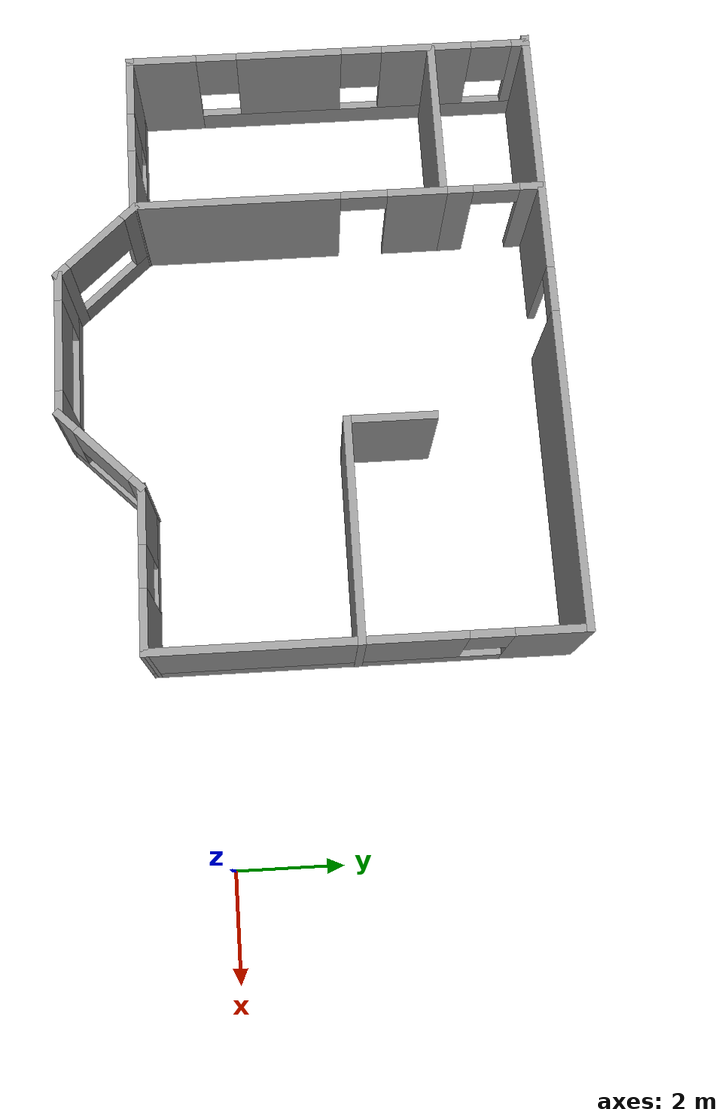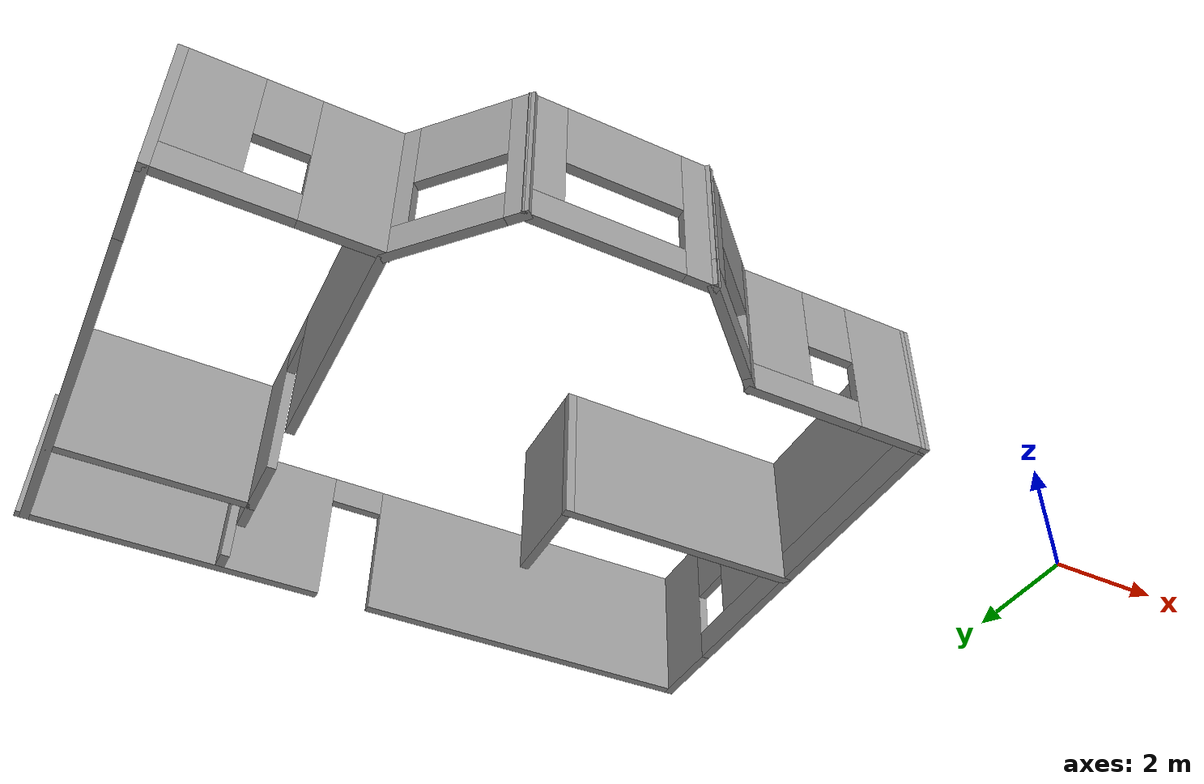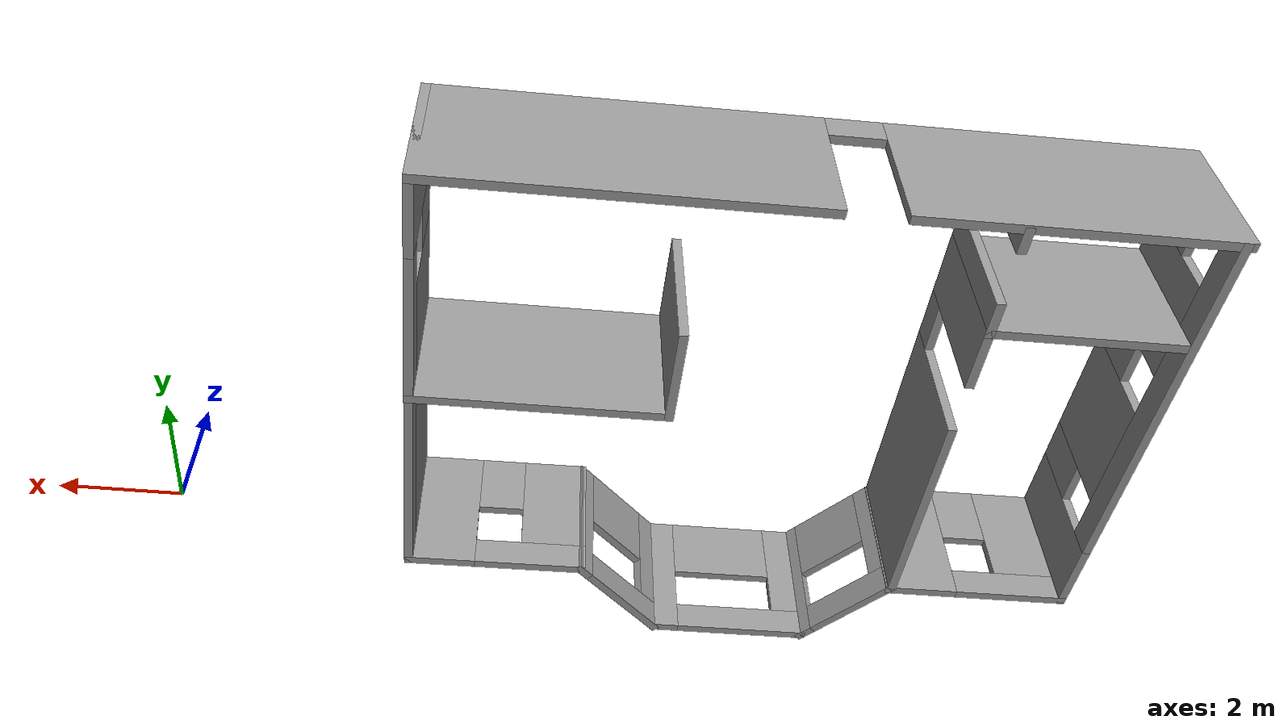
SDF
<?xml version='1.0'?>
<sdf version='1.6'>
  <model name='apartment2'>
    <pose frame=''>-9.67412 1.84886 0 0 -0 0</pose>
    <link name='Wall_10'>
      <pose frame=''>-4.26116 -3.17599 0 0 -0 3.14159</pose>
      <visual name='Wall_10_Visual_0'>
        <pose frame=''>-1.01463 0 1.25 0 -0 0</pose>
        <geometry>
          <box>
            <size>1.29272 0.15 2.5</size>
          </box>
        </geometry>
        <material>
          <script>
            <uri>file://media/materials/scripts/gazebo.material</uri>
            <name>Gazebo/Grey</name>
          </script>
          <ambient>1 1 1 1</ambient>
        </material>
        <meta>
          <layer>0</layer>
        </meta>
      </visual>
      <collision name='Wall_10_Collision_0'>
        <geometry>
          <box>
            <size>1.29272 0.15 2.5</size>
          </box>
        </geometry>
        <pose frame=''>-1.01463 0 1.25 0 -0 0</pose>
      </collision>
      <visual name='Wall_10_Visual_1'>
        <pose frame=''>0.64636 0 0.25 0 -0 0</pose>
        <geometry>
          <box>
            <size>2.02925 0.15 0.5</size>
          </box>
        </geometry>
        <material>
          <script>
            <uri>file://media/materials/scripts/gazebo.material</uri>
            <name>Gazebo/Grey</name>
          </script>
          <ambient>1 1 1 1</ambient>
        </material>
        <meta>
          <layer>0</layer>
        </meta>
      </visual>
      <collision name='Wall_10_Collision_1'>
        <geometry>
          <box>
            <size>2.02925 0.15 0.5</size>
          </box>
        </geometry>
        <pose frame=''>0.64636 0 0.25 0 -0 0</pose>
      </collision>
      <visual name='Wall_10_Visual_2'>
        <pose frame=''>1.04636 0 1.5 0 -0 0</pose>
        <geometry>
          <box>
            <size>1.22925 0.15 2</size>
          </box>
        </geometry>
        <material>
          <script>
            <uri>file://media/materials/scripts/gazebo.material</uri>
            <name>Gazebo/Grey</name>
          </script>
          <ambient>1 1 1 1</ambient>
        </material>
        <meta>
          <layer>0</layer>
        </meta>
      </visual>
      <collision name='Wall_10_Collision_2'>
        <geometry>
          <box>
            <size>1.22925 0.15 2</size>
          </box>
        </geometry>
        <pose frame=''>1.04636 0 1.5 0 -0 0</pose>
      </collision>
      <visual name='Wall_10_Visual_3'>
        <pose frame=''>0.031734 0 1.9 0 -0 0</pose>
        <geometry>
          <box>
            <size>0.8 0.15 1.2</size>
          </box>
        </geometry>
        <material>
          <script>
            <uri>file://media/materials/scripts/gazebo.material</uri>
            <name>Gazebo/Grey</name>
          </script>
          <ambient>1 1 1 1</ambient>
        </material>
        <meta>
          <layer>0</layer>
        </meta>
      </visual>
      <collision name='Wall_10_Collision_3'>
        <geometry>
          <box>
            <size>0.8 0.15 1.2</size>
          </box>
        </geometry>
        <pose frame=''>0.031734 0 1.9 0 -0 0</pose>
      </collision>
    </link>
    <link name='Wall_11'>
      <pose frame=''>-5.84712 0.749005 0 0 -0 1.5708</pose>
      <visual name='Wall_11_Visual_0'>
        <pose frame=''>-3.30802 0 1.25 0 -0 0</pose>
        <geometry>
          <box>
            <size>1.38396 0.15 2.5</size>
          </box>
        </geometry>
        <material>
          <script>
            <uri>file://media/materials/scripts/gazebo.material</uri>
            <name>Gazebo/Grey</name>
          </script>
          <ambient>1 1 1 1</ambient>
        </material>
        <meta>
          <layer>0</layer>
        </meta>
      </visual>
      <collision name='Wall_11_Collision_0'>
        <geometry>
          <box>
            <size>1.38396 0.15 2.5</size>
          </box>
        </geometry>
        <pose frame=''>-3.30802 0 1.25 0 -0 0</pose>
      </collision>
      <visual name='Wall_11_Visual_1'>
        <pose frame=''>0.691981 0 0.25 0 -0 0</pose>
        <geometry>
          <box>
            <size>6.61604 0.15 0.5</size>
          </box>
        </geometry>
        <material>
          <script>
            <uri>file://media/materials/scripts/gazebo.material</uri>
            <name>Gazebo/Grey</name>
          </script>
          <ambient>1 1 1 1</ambient>
        </material>
        <meta>
          <layer>0</layer>
        </meta>
      </visual>
      <collision name='Wall_11_Collision_1'>
        <geometry>
          <box>
            <size>6.61604 0.15 0.5</size>
          </box>
        </geometry>
        <pose frame=''>0.691981 0 0.25 0 -0 0</pose>
      </collision>
      <visual name='Wall_11_Visual_2'>
        <pose frame=''>-0.777617 0 1.5 0 -0 0</pose>
        <geometry>
          <box>
            <size>2.07684 0.15 2</size>
          </box>
        </geometry>
        <material>
          <script>
            <uri>file://media/materials/scripts/gazebo.material</uri>
            <name>Gazebo/Grey</name>
          </script>
          <ambient>1 1 1 1</ambient>
        </material>
        <meta>
          <layer>0</layer>
        </meta>
      </visual>
      <collision name='Wall_11_Collision_2'>
        <geometry>
          <box>
            <size>2.07684 0.15 2</size>
          </box>
        </geometry>
        <pose frame=''>-0.777617 0 1.5 0 -0 0</pose>
      </collision>
      <visual name='Wall_11_Visual_3'>
        <pose frame=''>1.95069 0 1.5 0 -0 0</pose>
        <geometry>
          <box>
            <size>1.77978 0.15 2</size>
          </box>
        </geometry>
        <material>
          <script>
            <uri>file://media/materials/scripts/gazebo.material</uri>
            <name>Gazebo/Grey</name>
          </script>
          <ambient>1 1 1 1</ambient>
        </material>
        <meta>
          <layer>0</layer>
        </meta>
      </visual>
      <collision name='Wall_11_Collision_3'>
        <geometry>
          <box>
            <size>1.77978 0.15 2</size>
          </box>
        </geometry>
        <pose frame=''>1.95069 0 1.5 0 -0 0</pose>
      </collision>
      <visual name='Wall_11_Visual_4'>
        <pose frame=''>3.82029 0 1.5 0 -0 0</pose>
        <geometry>
          <box>
            <size>0.359421 0.15 2</size>
          </box>
        </geometry>
        <material>
          <script>
            <uri>file://media/materials/scripts/gazebo.material</uri>
            <name>Gazebo/Grey</name>
          </script>
          <ambient>1 1 1 1</ambient>
        </material>
        <meta>
          <layer>0</layer>
        </meta>
      </visual>
      <collision name='Wall_11_Collision_4'>
        <geometry>
          <box>
            <size>0.359421 0.15 2</size>
          </box>
        </geometry>
        <pose frame=''>3.82029 0 1.5 0 -0 0</pose>
      </collision>
      <visual name='Wall_11_Visual_5'>
        <pose frame=''>-2.21604 0 1.9 0 -0 0</pose>
        <geometry>
          <box>
            <size>0.8 0.15 1.2</size>
          </box>
        </geometry>
        <material>
          <script>
            <uri>file://media/materials/scripts/gazebo.material</uri>
            <name>Gazebo/Grey</name>
          </script>
          <ambient>1 1 1 1</ambient>
        </material>
        <meta>
          <layer>0</layer>
        </meta>
      </visual>
      <collision name='Wall_11_Collision_5'>
        <geometry>
          <box>
            <size>0.8 0.15 1.2</size>
          </box>
        </geometry>
        <pose frame=''>-2.21604 0 1.9 0 -0 0</pose>
      </collision>
      <visual name='Wall_11_Visual_6'>
        <pose frame=''>0.660804 0 1.9 0 -0 0</pose>
        <geometry>
          <box>
            <size>0.8 0.15 1.2</size>
          </box>
        </geometry>
        <material>
          <script>
            <uri>file://media/materials/scripts/gazebo.material</uri>
            <name>Gazebo/Grey</name>
          </script>
          <ambient>1 1 1 1</ambient>
        </material>
        <meta>
          <layer>0</layer>
        </meta>
      </visual>
      <collision name='Wall_11_Collision_6'>
        <geometry>
          <box>
            <size>0.8 0.15 1.2</size>
          </box>
        </geometry>
        <pose frame=''>0.660804 0 1.9 0 -0 0</pose>
      </collision>
      <visual name='Wall_11_Visual_7'>
        <pose frame=''>3.24058 0 1.9 0 -0 0</pose>
        <geometry>
          <box>
            <size>0.8 0.15 1.2</size>
          </box>
        </geometry>
        <material>
          <script>
            <uri>file://media/materials/scripts/gazebo.material</uri>
            <name>Gazebo/Grey</name>
          </script>
          <ambient>1 1 1 1</ambient>
        </material>
        <meta>
          <layer>0</layer>
        </meta>
      </visual>
      <collision name='Wall_11_Collision_7'>
        <geometry>
          <box>
            <size>0.8 0.15 1.2</size>
          </box>
        </geometry>
        <pose frame=''>3.24058 0 1.9 0 -0 0</pose>
      </collision>
    </link>
    <link name='Wall_13'>
      <pose frame=''>-2.70325 3.71033 0 0 0 -1.5708</pose>
      <visual name='Wall_13_Visual_0'>
        <pose frame=''>-0.773954 0 1.25 0 -0 0</pose>
        <geometry>
          <box>
            <size>0.452092 0.15 2.5</size>
          </box>
        </geometry>
        <material>
          <script>
            <uri>file://media/materials/scripts/gazebo.material</uri>
            <name>Gazebo/Grey</name>
          </script>
          <ambient>1 1 1 1</ambient>
        </material>
        <meta>
          <layer>0</layer>
        </meta>
      </visual>
      <collision name='Wall_13_Collision_0'>
        <geometry>
          <box>
            <size>0.452092 0.15 2.5</size>
          </box>
        </geometry>
        <pose frame=''>-0.773954 0 1.25 0 -0 0</pose>
      </collision>
      <visual name='Wall_13_Visual_1'>
        <pose frame=''>0.676046 0 1.25 0 -0 0</pose>
        <geometry>
          <box>
            <size>0.647908 0.15 2.5</size>
          </box>
        </geometry>
        <material>
          <script>
            <uri>file://media/materials/scripts/gazebo.material</uri>
            <name>Gazebo/Grey</name>
          </script>
          <ambient>1 1 1 1</ambient>
        </material>
        <meta>
          <layer>0</layer>
        </meta>
      </visual>
      <collision name='Wall_13_Collision_1'>
        <geometry>
          <box>
            <size>0.647908 0.15 2.5</size>
          </box>
        </geometry>
        <pose frame=''>0.676046 0 1.25 0 -0 0</pose>
      </collision>
      <visual name='Wall_13_Visual_2'>
        <pose frame=''>-0.097908 0 2.25 0 -0 0</pose>
        <geometry>
          <box>
            <size>0.9 0.15 0.5</size>
          </box>
        </geometry>
        <material>
          <script>
            <uri>file://media/materials/scripts/gazebo.material</uri>
            <name>Gazebo/Grey</name>
          </script>
          <ambient>1 1 1 1</ambient>
        </material>
        <meta>
          <layer>0</layer>
        </meta>
      </visual>
      <collision name='Wall_13_Collision_2'>
        <geometry>
          <box>
            <size>0.9 0.15 0.5</size>
          </box>
        </geometry>
        <pose frame=''>-0.097908 0 2.25 0 -0 0</pose>
      </collision>
    </link>
    <link name='Wall_14'>
      <collision name='Wall_14_Collision'>
        <geometry>
          <box>
            <size>3.25 0.15 2.5</size>
          </box>
        </geometry>
        <pose frame=''>0 0 1.25 0 -0 0</pose>
      </collision>
      <visual name='Wall_14_Visual'>
        <pose frame=''>0 0 1.25 0 -0 0</pose>
        <geometry>
          <box>
            <size>3.25 0.15 2.5</size>
          </box>
        </geometry>
        <material>
          <script>
            <uri>file://media/materials/scripts/gazebo.material</uri>
            <name>Gazebo/Grey</name>
          </script>
          <ambient>1 1 1 1</ambient>
        </material>
        <meta>
          <layer>0</layer>
        </meta>
      </visual>
      <pose frame=''>-4.25325 2.78533 0 0 -0 3.14159</pose>
    </link>
    <link name='Wall_16'>
      <pose frame=''>-2.70325 -0.139673 0 0 0 -1.5708</pose>
      <visual name='Wall_16_Visual_0'>
        <pose frame=''>-2.42236 0 1.25 0 -0 0</pose>
        <geometry>
          <box>
            <size>1.15529 0.15 2.5</size>
          </box>
        </geometry>
        <material>
          <script>
            <uri>file://media/materials/scripts/gazebo.material</uri>
            <name>Gazebo/Grey</name>
          </script>
          <ambient>1 1 1 1</ambient>
        </material>
        <meta>
          <layer>0</layer>
        </meta>
      </visual>
      <collision name='Wall_16_Collision_0'>
        <geometry>
          <box>
            <size>1.15529 0.15 2.5</size>
          </box>
        </geometry>
        <pose frame=''>-2.42236 0 1.25 0 -0 0</pose>
      </collision>
      <visual name='Wall_16_Visual_1'>
        <pose frame=''>1.02764 0 1.25 0 -0 0</pose>
        <geometry>
          <box>
            <size>3.94471 0.15 2.5</size>
          </box>
        </geometry>
        <material>
          <script>
            <uri>file://media/materials/scripts/gazebo.material</uri>
            <name>Gazebo/Grey</name>
          </script>
          <ambient>1 1 1 1</ambient>
        </material>
        <meta>
          <layer>0</layer>
        </meta>
      </visual>
      <collision name='Wall_16_Collision_1'>
        <geometry>
          <box>
            <size>3.94471 0.15 2.5</size>
          </box>
        </geometry>
        <pose frame=''>1.02764 0 1.25 0 -0 0</pose>
      </collision>
      <visual name='Wall_16_Visual_2'>
        <pose frame=''>-1.39471 0 2.25 0 -0 0</pose>
        <geometry>
          <box>
            <size>0.9 0.15 0.5</size>
          </box>
        </geometry>
        <material>
          <script>
            <uri>file://media/materials/scripts/gazebo.material</uri>
            <name>Gazebo/Grey</name>
          </script>
          <ambient>1 1 1 1</ambient>
        </material>
        <meta>
          <layer>0</layer>
        </meta>
      </visual>
      <collision name='Wall_16_Collision_2'>
        <geometry>
          <box>
            <size>0.9 0.15 0.5</size>
          </box>
        </geometry>
        <pose frame=''>-1.39471 0 2.25 0 -0 0</pose>
      </collision>
    </link>
    <link name='Wall_18'>
      <collision name='Wall_18_Collision'>
        <geometry>
          <box>
            <size>4.25 0.15 2.5</size>
          </box>
        </geometry>
        <pose frame=''>0 0 1.25 0 -0 0</pose>
      </collision>
      <visual name='Wall_18_Visual'>
        <pose frame=''>0 0 1.25 0 -0 0</pose>
        <geometry>
          <box>
            <size>4.25 0.15 2.5</size>
          </box>
        </geometry>
        <material>
          <script>
            <uri>file://media/materials/scripts/gazebo.material</uri>
            <name>Gazebo/Grey</name>
          </script>
          <ambient>1 1 1 1</ambient>
        </material>
        <meta>
          <layer>0</layer>
        </meta>
      </visual>
      <pose frame=''>3.87727 0.64371 0 0 -0 3.14159</pose>
    </link>
    <link name='Wall_19'>
      <collision name='Wall_19_Collision'>
        <geometry>
          <box>
            <size>1.75 0.15 2.5</size>
          </box>
        </geometry>
        <pose frame=''>0 0 1.25 0 -0 0</pose>
      </collision>
      <visual name='Wall_19_Visual'>
        <pose frame=''>0 0 1.25 0 -0 0</pose>
        <geometry>
          <box>
            <size>1.75 0.15 2.5</size>
          </box>
        </geometry>
        <material>
          <script>
            <uri>file://media/materials/scripts/gazebo.material</uri>
            <name>Gazebo/Grey</name>
          </script>
          <ambient>1 1 1 1</ambient>
        </material>
        <meta>
          <layer>0</layer>
        </meta>
      </visual>
      <pose frame=''>1.82727 1.44371 0 0 -0 1.5708</pose>
    </link>
    <link name='Wall_4'>
      <pose frame=''>-0.002273 4.67401 0 0 -0 0</pose>
      <visual name='Wall_4_Visual_0'>
        <pose frame=''>-3.49667 0 1.25 0 -0 0</pose>
        <geometry>
          <box>
            <size>5.00665 0.15 2.5</size>
          </box>
        </geometry>
        <material>
          <script>
            <uri>file://media/materials/scripts/gazebo.material</uri>
            <name>Gazebo/Grey</name>
          </script>
          <ambient>1 1 1 1</ambient>
        </material>
        <meta>
          <layer>0</layer>
        </meta>
      </visual>
      <collision name='Wall_4_Collision_0'>
        <geometry>
          <box>
            <size>5.00665 0.15 2.5</size>
          </box>
        </geometry>
        <pose frame=''>-3.49667 0 1.25 0 -0 0</pose>
      </collision>
      <visual name='Wall_4_Visual_1'>
        <pose frame=''>2.95333 0 1.25 0 -0 0</pose>
        <geometry>
          <box>
            <size>6.09335 0.15 2.5</size>
          </box>
        </geometry>
        <material>
          <script>
            <uri>file://media/materials/scripts/gazebo.material</uri>
            <name>Gazebo/Grey</name>
          </script>
          <ambient>1 1 1 1</ambient>
        </material>
        <meta>
          <layer>0</layer>
        </meta>
      </visual>
      <collision name='Wall_4_Collision_1'>
        <geometry>
          <box>
            <size>6.09335 0.15 2.5</size>
          </box>
        </geometry>
        <pose frame=''>2.95333 0 1.25 0 -0 0</pose>
      </collision>
      <visual name='Wall_4_Visual_2'>
        <pose frame=''>-0.543346 0 2.25 0 -0 0</pose>
        <geometry>
          <box>
            <size>0.9 0.15 0.5</size>
          </box>
        </geometry>
        <material>
          <script>
            <uri>file://media/materials/scripts/gazebo.material</uri>
            <name>Gazebo/Grey</name>
          </script>
          <ambient>1 1 1 1</ambient>
        </material>
        <meta>
          <layer>0</layer>
        </meta>
      </visual>
      <collision name='Wall_4_Collision_2'>
        <geometry>
          <box>
            <size>0.9 0.15 0.5</size>
          </box>
        </geometry>
        <pose frame=''>-0.543346 0 2.25 0 -0 0</pose>
      </collision>
    </link>
    <link name='Wall_5'>
      <pose frame=''>5.92273 0.749005 0 0 0 -1.5708</pose>
      <visual name='Wall_5_Visual_0'>
        <pose frame=''>-3.29652 0 1.25 0 -0 0</pose>
        <geometry>
          <box>
            <size>1.40697 0.15 2.5</size>
          </box>
        </geometry>
        <material>
          <script>
            <uri>file://media/materials/scripts/gazebo.material</uri>
            <name>Gazebo/Grey</name>
          </script>
          <ambient>1 1 1 1</ambient>
        </material>
        <meta>
          <layer>0</layer>
        </meta>
      </visual>
      <collision name='Wall_5_Collision_0'>
        <geometry>
          <box>
            <size>1.40697 0.15 2.5</size>
          </box>
        </geometry>
        <pose frame=''>-3.29652 0 1.25 0 -0 0</pose>
      </collision>
      <visual name='Wall_5_Visual_1'>
        <pose frame=''>0.703483 0 0.25 0 -0 0</pose>
        <geometry>
          <box>
            <size>6.59303 0.15 0.5</size>
          </box>
        </geometry>
        <material>
          <script>
            <uri>file://media/materials/scripts/gazebo.material</uri>
            <name>Gazebo/Grey</name>
          </script>
          <ambient>1 1 1 1</ambient>
        </material>
        <meta>
          <layer>0</layer>
        </meta>
      </visual>
      <collision name='Wall_5_Collision_1'>
        <geometry>
          <box>
            <size>6.59303 0.15 0.5</size>
          </box>
        </geometry>
        <pose frame=''>0.703483 0 0.25 0 -0 0</pose>
      </collision>
      <visual name='Wall_5_Visual_2'>
        <pose frame=''>1.10348 0 1.5 0 -0 0</pose>
        <geometry>
          <box>
            <size>5.79303 0.15 2</size>
          </box>
        </geometry>
        <material>
          <script>
            <uri>file://media/materials/scripts/gazebo.material</uri>
            <name>Gazebo/Grey</name>
          </script>
          <ambient>1 1 1 1</ambient>
        </material>
        <meta>
          <layer>0</layer>
        </meta>
      </visual>
      <collision name='Wall_5_Collision_2'>
        <geometry>
          <box>
            <size>5.79303 0.15 2</size>
          </box>
        </geometry>
        <pose frame=''>1.10348 0 1.5 0 -0 0</pose>
      </collision>
      <visual name='Wall_5_Visual_3'>
        <pose frame=''>-2.19303 0 1.9 0 -0 0</pose>
        <geometry>
          <box>
            <size>0.8 0.15 1.2</size>
          </box>
        </geometry>
        <material>
          <script>
            <uri>file://media/materials/scripts/gazebo.material</uri>
            <name>Gazebo/Grey</name>
          </script>
          <ambient>1 1 1 1</ambient>
        </material>
        <meta>
          <layer>0</layer>
        </meta>
      </visual>
      <collision name='Wall_5_Collision_3'>
        <geometry>
          <box>
            <size>0.8 0.15 1.2</size>
          </box>
        </geometry>
        <pose frame=''>-2.19303 0 1.9 0 -0 0</pose>
      </collision>
    </link>
    <link name='Wall_6'>
      <pose frame=''>4.41041 -3.16701 0 0 -0 3.13565</pose>
      <visual name='Wall_6_Visual_0'>
        <pose frame=''>-0.973207 0 1.25 0 -0 0</pose>
        <geometry>
          <box>
            <size>1.22827 0.15 2.5</size>
          </box>
        </geometry>
        <material>
          <script>
            <uri>file://media/materials/scripts/gazebo.material</uri>
            <name>Gazebo/Grey</name>
          </script>
          <ambient>1 1 1 1</ambient>
        </material>
        <meta>
          <layer>0</layer>
        </meta>
      </visual>
      <collision name='Wall_6_Collision_0'>
        <geometry>
          <box>
            <size>1.22827 0.15 2.5</size>
          </box>
        </geometry>
        <pose frame=''>-0.973207 0 1.25 0 -0 0</pose>
      </collision>
      <visual name='Wall_6_Visual_1'>
        <pose frame=''>0.614136 0 0.25 0 -0 0</pose>
        <geometry>
          <box>
            <size>1.94641 0.15 0.5</size>
          </box>
        </geometry>
        <material>
          <script>
            <uri>file://media/materials/scripts/gazebo.material</uri>
            <name>Gazebo/Grey</name>
          </script>
          <ambient>1 1 1 1</ambient>
        </material>
        <meta>
          <layer>0</layer>
        </meta>
      </visual>
      <collision name='Wall_6_Collision_1'>
        <geometry>
          <box>
            <size>1.94641 0.15 0.5</size>
          </box>
        </geometry>
        <pose frame=''>0.614136 0 0.25 0 -0 0</pose>
      </collision>
      <visual name='Wall_6_Visual_2'>
        <pose frame=''>1.01414 0 1.5 0 -0 0</pose>
        <geometry>
          <box>
            <size>1.14641 0.15 2</size>
          </box>
        </geometry>
        <material>
          <script>
            <uri>file://media/materials/scripts/gazebo.material</uri>
            <name>Gazebo/Grey</name>
          </script>
          <ambient>1 1 1 1</ambient>
        </material>
        <meta>
          <layer>0</layer>
        </meta>
      </visual>
      <collision name='Wall_6_Collision_2'>
        <geometry>
          <box>
            <size>1.14641 0.15 2</size>
          </box>
        </geometry>
        <pose frame=''>1.01414 0 1.5 0 -0 0</pose>
      </collision>
      <visual name='Wall_6_Visual_3'>
        <pose frame=''>0.040929 0 1.9 0 -0 0</pose>
        <geometry>
          <box>
            <size>0.8 0.15 1.2</size>
          </box>
        </geometry>
        <material>
          <script>
            <uri>file://media/materials/scripts/gazebo.material</uri>
            <name>Gazebo/Grey</name>
          </script>
          <ambient>1 1 1 1</ambient>
        </material>
        <meta>
          <layer>0</layer>
        </meta>
      </visual>
      <collision name='Wall_6_Collision_3'>
        <geometry>
          <box>
            <size>0.8 0.15 1.2</size>
          </box>
        </geometry>
        <pose frame=''>0.040929 0 1.9 0 -0 0</pose>
      </collision>
    </link>
    <link name='Wall_7'>
      <pose frame=''>2.15563 -3.90048 0 0 0 -2.35619</pose>
      <visual name='Wall_7_Visual_0'>
        <pose frame=''>-0.960163 0 1.25 0 -0 0</pose>
        <geometry>
          <box>
            <size>0.329675 0.15 2.5</size>
          </box>
        </geometry>
        <material>
          <script>
            <uri>file://media/materials/scripts/gazebo.material</uri>
            <name>Gazebo/Grey</name>
          </script>
          <ambient>1 1 1 1</ambient>
        </material>
        <meta>
          <layer>0</layer>
        </meta>
      </visual>
      <collision name='Wall_7_Collision_0'>
        <geometry>
          <box>
            <size>0.329675 0.15 2.5</size>
          </box>
        </geometry>
        <pose frame=''>-0.960163 0 1.25 0 -0 0</pose>
      </collision>
      <visual name='Wall_7_Visual_1'>
        <pose frame=''>0.164837 0 0.25 0 -0 0</pose>
        <geometry>
          <box>
            <size>1.92033 0.15 0.5</size>
          </box>
        </geometry>
        <material>
          <script>
            <uri>file://media/materials/scripts/gazebo.material</uri>
            <name>Gazebo/Grey</name>
          </script>
          <ambient>1 1 1 1</ambient>
        </material>
        <meta>
          <layer>0</layer>
        </meta>
      </visual>
      <collision name='Wall_7_Collision_1'>
        <geometry>
          <box>
            <size>1.92033 0.15 0.5</size>
          </box>
        </geometry>
        <pose frame=''>0.164837 0 0.25 0 -0 0</pose>
      </collision>
      <visual name='Wall_7_Visual_2'>
        <pose frame=''>0.864837 0 1.5 0 -0 0</pose>
        <geometry>
          <box>
            <size>0.520325 0.15 2</size>
          </box>
        </geometry>
        <material>
          <script>
            <uri>file://media/materials/scripts/gazebo.material</uri>
            <name>Gazebo/Grey</name>
          </script>
          <ambient>1 1 1 1</ambient>
        </material>
        <meta>
          <layer>0</layer>
        </meta>
      </visual>
      <collision name='Wall_7_Collision_2'>
        <geometry>
          <box>
            <size>0.520325 0.15 2</size>
          </box>
        </geometry>
        <pose frame=''>0.864837 0 1.5 0 -0 0</pose>
      </collision>
      <visual name='Wall_7_Visual_3'>
        <pose frame=''>-0.095325 0 1.9 0 -0 0</pose>
        <geometry>
          <box>
            <size>1.4 0.15 1.2</size>
          </box>
        </geometry>
        <material>
          <script>
            <uri>file://media/materials/scripts/gazebo.material</uri>
            <name>Gazebo/Grey</name>
          </script>
          <ambient>1 1 1 1</ambient>
        </material>
        <meta>
          <layer>0</layer>
        </meta>
      </visual>
      <collision name='Wall_7_Collision_3'>
        <geometry>
          <box>
            <size>1.4 0.15 1.2</size>
          </box>
        </geometry>
        <pose frame=''>-0.095325 0 1.9 0 -0 0</pose>
      </collision>
    </link>
    <link name='Wall_8'>
      <pose frame=''>0.033121 -4.62496 0 0 -0 3.14159</pose>
      <visual name='Wall_8_Visual_0'>
        <pose frame=''>-1.19382 0 1.25 0 -0 0</pose>
        <geometry>
          <box>
            <size>0.522461 0.15 2.5</size>
          </box>
        </geometry>
        <material>
          <script>
            <uri>file://media/materials/scripts/gazebo.material</uri>
            <name>Gazebo/Grey</name>
          </script>
          <ambient>1 1 1 1</ambient>
        </material>
        <meta>
          <layer>0</layer>
        </meta>
      </visual>
      <collision name='Wall_8_Collision_0'>
        <geometry>
          <box>
            <size>0.522461 0.15 2.5</size>
          </box>
        </geometry>
        <pose frame=''>-1.19382 0 1.25 0 -0 0</pose>
      </collision>
      <visual name='Wall_8_Visual_1'>
        <pose frame=''>0.261231 0 0.25 0 -0 0</pose>
        <geometry>
          <box>
            <size>2.38764 0.15 0.5</size>
          </box>
        </geometry>
        <material>
          <script>
            <uri>file://media/materials/scripts/gazebo.material</uri>
            <name>Gazebo/Grey</name>
          </script>
          <ambient>1 1 1 1</ambient>
        </material>
        <meta>
          <layer>0</layer>
        </meta>
      </visual>
      <collision name='Wall_8_Collision_1'>
        <geometry>
          <box>
            <size>2.38764 0.15 0.5</size>
          </box>
        </geometry>
        <pose frame=''>0.261231 0 0.25 0 -0 0</pose>
      </collision>
      <visual name='Wall_8_Visual_2'>
        <pose frame=''>1.16123 0 1.5 0 -0 0</pose>
        <geometry>
          <box>
            <size>0.587637 0.15 2</size>
          </box>
        </geometry>
        <material>
          <script>
            <uri>file://media/materials/scripts/gazebo.material</uri>
            <name>Gazebo/Grey</name>
          </script>
          <ambient>1 1 1 1</ambient>
        </material>
        <meta>
          <layer>0</layer>
        </meta>
      </visual>
      <collision name='Wall_8_Collision_2'>
        <geometry>
          <box>
            <size>0.587637 0.15 2</size>
          </box>
        </geometry>
        <pose frame=''>1.16123 0 1.5 0 -0 0</pose>
      </collision>
      <visual name='Wall_8_Visual_3'>
        <pose frame=''>-0.032588 0 1.9 0 -0 0</pose>
        <geometry>
          <box>
            <size>1.8 0.15 1.2</size>
          </box>
        </geometry>
        <material>
          <script>
            <uri>file://media/materials/scripts/gazebo.material</uri>
            <name>Gazebo/Grey</name>
          </script>
          <ambient>1 1 1 1</ambient>
        </material>
        <meta>
          <layer>0</layer>
        </meta>
      </visual>
      <collision name='Wall_8_Collision_3'>
        <geometry>
          <box>
            <size>1.8 0.15 1.2</size>
          </box>
        </geometry>
        <pose frame=''>-0.032588 0 1.9 0 -0 0</pose>
      </collision>
    </link>
    <link name='Wall_9'>
      <pose frame=''>-2.01106 -3.90048 0 0 -0 2.30057</pose>
      <visual name='Wall_9_Visual_0'>
        <pose frame=''>-0.895676 0 1.25 0 -0 0</pose>
        <geometry>
          <box>
            <size>0.350961 0.15 2.5</size>
          </box>
        </geometry>
        <material>
          <script>
            <uri>file://media/materials/scripts/gazebo.material</uri>
            <name>Gazebo/Grey</name>
          </script>
          <ambient>1 1 1 1</ambient>
        </material>
        <meta>
          <layer>0</layer>
        </meta>
      </visual>
      <collision name='Wall_9_Collision_0'>
        <geometry>
          <box>
            <size>0.350961 0.15 2.5</size>
          </box>
        </geometry>
        <pose frame=''>-0.895676 0 1.25 0 -0 0</pose>
      </collision>
      <visual name='Wall_9_Visual_1'>
        <pose frame=''>0.175481 0 0.25 0 -0 0</pose>
        <geometry>
          <box>
            <size>1.79135 0.15 0.5</size>
          </box>
        </geometry>
        <material>
          <script>
            <uri>file://media/materials/scripts/gazebo.material</uri>
            <name>Gazebo/Grey</name>
          </script>
          <ambient>1 1 1 1</ambient>
        </material>
        <meta>
          <layer>0</layer>
        </meta>
      </visual>
      <collision name='Wall_9_Collision_1'>
        <geometry>
          <box>
            <size>1.79135 0.15 0.5</size>
          </box>
        </geometry>
        <pose frame=''>0.175481 0 0.25 0 -0 0</pose>
      </collision>
      <visual name='Wall_9_Visual_2'>
        <pose frame=''>0.875481 0 1.5 0 -0 0</pose>
        <geometry>
          <box>
            <size>0.391351 0.15 2</size>
          </box>
        </geometry>
        <material>
          <script>
            <uri>file://media/materials/scripts/gazebo.material</uri>
            <name>Gazebo/Grey</name>
          </script>
          <ambient>1 1 1 1</ambient>
        </material>
        <meta>
          <layer>0</layer>
        </meta>
      </visual>
      <collision name='Wall_9_Collision_2'>
        <geometry>
          <box>
            <size>0.391351 0.15 2</size>
          </box>
        </geometry>
        <pose frame=''>0.875481 0 1.5 0 -0 0</pose>
      </collision>
      <visual name='Wall_9_Visual_3'>
        <pose frame=''>-0.020195 0 1.9 0 -0 0</pose>
        <geometry>
          <box>
            <size>1.4 0.15 1.2</size>
          </box>
        </geometry>
        <material>
          <script>
            <uri>file://media/materials/scripts/gazebo.material</uri>
            <name>Gazebo/Grey</name>
          </script>
          <ambient>1 1 1 1</ambient>
        </material>
        <meta>
          <layer>0</layer>
        </meta>
      </visual>
      <collision name='Wall_9_Collision_3'>
        <geometry>
          <box>
            <size>1.4 0.15 1.2</size>
          </box>
        </geometry>
        <pose frame=''>-0.020195 0 1.9 0 -0 0</pose>
      </collision>
    </link>
    <static>1</static>
  </model>
</sdf>
